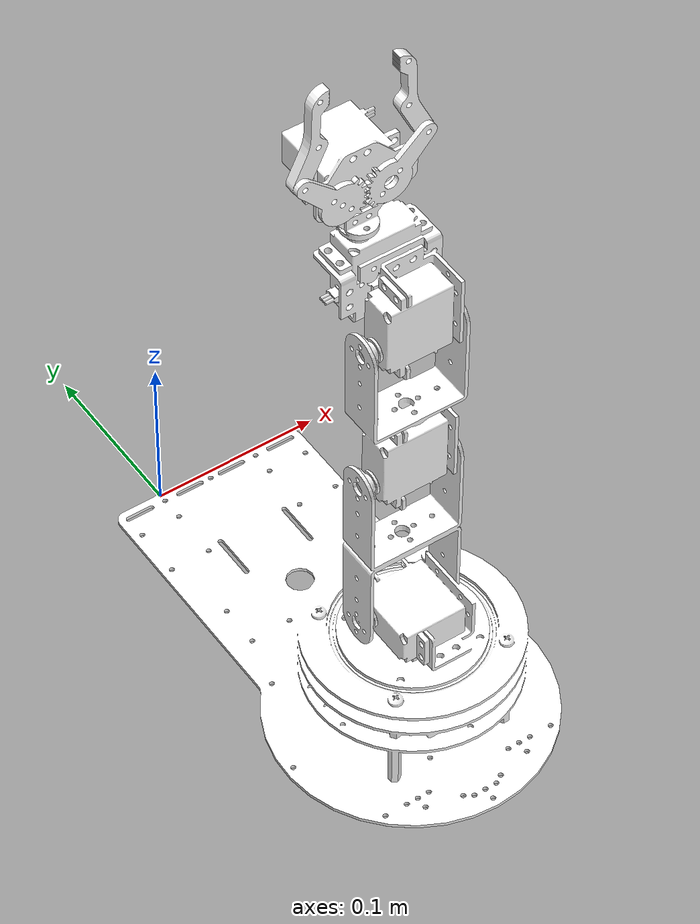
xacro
<?xml version="1.0"?>
<robot name="xrobot" xmlns:xacro="http://www.ros.org/wiki/xacro">
 <link name="world"/>
  <joint name="fixed" type="fixed">
    <parent link="world" />
    <child link="base_link" />
  </joint>
  <link
    name="base_link">
    <inertial>
      <origin
        xyz="0.0292502890665502 -0.178648801106571 0.0263512029302801"
        rpy="0 0 0" />
      <mass
        value="0.172815782772731" />
      <inertia
        ixx="0.000259349430323028"
        ixy="2.66244067148391E-13"
        ixz="-1.85201162809901E-13"
        iyy="0.000106356896106291"
        iyz="0.000100551527226304"
        izz="0.000169028677854162" />
    </inertial>
    <visual>
      <origin
        xyz="0 0 0"
        rpy="0 0 0" />
      <geometry>
        <mesh
          filename="package://xrobot/meshes/base_link.STL" />
      </geometry>
      <material
        name="">
        <color
          rgba="1 1 1 1" />
      </material>
    </visual>
    <collision>
      <origin
        xyz="0 0 0"
        rpy="0 0 0" />
      <geometry>
        <mesh
          filename="package://xrobot/meshes/base_link.STL" />
      </geometry>
    </collision>
  </link>
  <link
    name="link1">
    <inertial>
      <origin
        xyz="0.000447016246568756 0.00039635290899287 -0.0208005509059673"
        rpy="0 0 0" />
      <mass
        value="0.0580393899360045" />
      <inertia
        ixx="6.42193242103214E-06"
        ixy="-1.27097151646603E-08"
        ixz="-1.80700954506609E-07"
        iyy="6.92729489609466E-06"
        iyz="2.08993863386814E-08"
        izz="5.0631081327756E-07" />
    </inertial>
    <visual>
      <origin
        xyz="0 0 0"
        rpy="0 0 0" />
      <geometry>
        <mesh
          filename="package://xrobot/meshes/link1.STL" />
      </geometry>
      <material
        name="">
        <color
          rgba="1 1 1 1" />
      </material>
    </visual>
    <collision>
      <origin
        xyz="0 0 0"
        rpy="0 0 0" />
      <geometry>
        <mesh
          filename="package://xrobot/meshes/link1.STL" />
      </geometry>
    </collision>
  </link>
  <joint
    name="joint1"
    type="revolute">
    <origin
      xyz="0.02925 -0.19971 0.051"
      rpy="3.1416 0 0" />
    <parent
      link="base_link" />
    <child
      link="link1" />
    <axis
      xyz="0 0 1" />
    <limit
      lower="-3.14"
      upper="3.14"
      effort="100"
      velocity="1" />
  </joint>
  <link
    name="link2">
    <inertial>
      <origin
        xyz="1.38777878078145E-16 -0.0495614950731298 0.0238649956179246"
        rpy="0 0 0" />
      <mass
        value="0.0169994797251937" />
      <inertia
        ixx="9.8891754215374E-06"
        ixy="-2.81215621363918E-20"
        ixz="1.19279858350565E-20"
        iyy="4.4509372117766E-07"
        iyz="9.56263472768032E-07"
        izz="9.44408170035974E-06" />
    </inertial>
    <visual>
      <origin
        xyz="0 0 0"
        rpy="0 0 0" />
      <geometry>
        <mesh
          filename="package://xrobot/meshes/link2.STL" />
      </geometry>
      <material
        name="">
        <color
          rgba="1 1 1 1" />
      </material>
    </visual>
    <collision>
      <origin
        xyz="0 0 0"
        rpy="0 0 0" />
      <geometry>
        <mesh
          filename="package://xrobot/meshes/link2.STL" />
      </geometry>
    </collision>
  </link>
  <joint
    name="joint2"
    type="revolute">
    <origin
      xyz="-0.026 -0.0093623 -0.029"
      rpy="1.5708 0 1.5708" />
    <parent
      link="link1" />
    <child
      link="link2" />
    <axis
      xyz="0 0 1" />
    <limit
      lower="-3.14"
      upper="3.14"
      effort="100"
      velocity="1" />
  </joint>
  <link
    name="link3">
    <inertial>
      <origin
        xyz="0.00121857829689442 -0.020136005738826 -0.0259121615749935"
        rpy="0 0 0" />
      <mass
        value="0.0492429864623639" />
      <inertia
        ixx="2.28264243613525E-05"
        ixy="-4.58799806953608E-07"
        ixz="3.8935227406194E-07"
        iyy="1.53617796306787E-06"
        iyz="2.63577384017472E-07"
        izz="2.22944242031796E-05" />
    </inertial>
    <visual>
      <origin
        xyz="0 0 0"
        rpy="0 0 0" />
      <geometry>
        <mesh
          filename="package://xrobot/meshes/link3.STL" />
      </geometry>
      <material
        name="">
        <color
          rgba="1 1 1 1" />
      </material>
    </visual>
    <collision>
      <origin
        xyz="0 0 0"
        rpy="0 0 0" />
      <geometry>
        <mesh
          filename="package://xrobot/meshes/link3.STL" />
      </geometry>
    </collision>
  </link>
  <joint
    name="joint3"
    type="revolute">
    <origin
      xyz="0 -0.104 0"
      rpy="3.1416 1E-15 -3.1416" />
    <parent
      link="link2" />
    <child
      link="link3" />
    <axis
      xyz="0 0 -1" />
    <limit
      lower="-3.14"
      upper="3.14"
      effort="100"
      velocity="1" />
  </joint>
  <link
    name="link4">
    <inertial>
      <origin
        xyz="-0.0138537781432201 -0.019593553101695 0.0254900603887009"
        rpy="0 0 0" />
      <mass
        value="0.0763258518316471" />
      <inertia
        ixx="9.4187405427334E-06"
        ixy="-1.0309341320149E-05"
        ixz="-2.8447464915813E-07"
        iyy="1.42525755322077E-05"
        iyz="-3.27430668795753E-07"
        izz="2.15543313078854E-05" />
    </inertial>
    <visual>
      <origin
        xyz="0 0 0"
        rpy="0 0 0" />
      <geometry>
        <mesh
          filename="package://xrobot/meshes/link4.STL" />
      </geometry>
      <material
        name="">
        <color
          rgba="1 1 1 1" />
      </material>
    </visual>
    <collision>
      <origin
        xyz="0 0 0"
        rpy="0 0 0" />
      <geometry>
        <mesh
          filename="package://xrobot/meshes/link4.STL" />
      </geometry>
    </collision>
  </link>
  <joint
    name="joint4"
    type="revolute">
    <origin
      xyz="-0.001 -0.0965 0"
      rpy="-3.1416 -2E-15 -3.1416" />
    <parent
      link="link3" />
    <child
      link="link4" />
    <axis
      xyz="0 0 1" />
    <limit
      lower="-3.14"
      upper="3.14"
      effort="100"
      velocity="1" />
  </joint>
  <link
    name="link5">
    <inertial>
      <origin
        xyz="0.00388024415039572 0.0191733087894507 0.0248820232279329"
        rpy="0 0 0" />
      <mass
        value="0.0370354482255755" />
      <inertia
        ixx="3.09590716584593E-06"
        ixy="-2.69265113020214E-07"
        ixz="-1.60660619656558E-07"
        iyy="1.00181294933733E-06"
        iyz="-7.93866455643796E-07"
        izz="2.17341885790538E-06" />
    </inertial>
    <visual>
      <origin
        xyz="0 0 0"
        rpy="0 0 0" />
      <geometry>
        <mesh
          filename="package://xrobot/meshes/link5.STL" />
      </geometry>
      <material
        name="">
        <color
          rgba="1 1 1 1" />
      </material>
    </visual>
    <collision>
      <origin
        xyz="0 0 0"
        rpy="0 0 0" />
      <geometry>
        <mesh
          filename="package://xrobot/meshes/link5.STL" />
      </geometry>
    </collision>
  </link>
  <joint
    name="joint5"
    type="revolute">
    <origin
      xyz="-0.028 -0.0565 0.015"
      rpy="1.5708 -1.5708 0" />
    <parent
      link="link4" />
    <child
      link="link5" />
    <axis
      xyz="0 0 -1" />
    <limit
      lower="-3.14"
      upper="3.14"
      effort="100"
      velocity="1" />
  </joint>
  <link
    name="link6">
    <inertial>
      <origin
        xyz="0.0101389216911046 -0.0265895214562799 0.000106345188996604"
        rpy="0 0 0" />
      <mass
        value="0.00470245908475118" />
      <inertia
        ixx="1.57344908677699E-06"
        ixy="4.24373033709471E-07"
        ixz="-5.19250825344558E-08"
        iyy="1.39379774569395E-07"
        iyz="1.89682977766353E-07"
        izz="1.66641071743274E-06" />
    </inertial>
    <visual>
      <origin
        xyz="0 0 0"
        rpy="0 0 0" />
      <geometry>
        <mesh
          filename="package://xrobot/meshes/link6.STL" />
      </geometry>
      <material
        name="">
        <color
          rgba="1 1 1 1" />
      </material>
    </visual>
    <collision>
      <origin
        xyz="0 0 0"
        rpy="0 0 0" />
      <geometry>
        <mesh
          filename="package://xrobot/meshes/link6.STL" />
      </geometry>
    </collision>
  </link>
  <joint
    name="joint6"
    type="revolute">
    <origin
      xyz="0.013997 -0.0030157 0.026"
      rpy="-1.5708 1.3997E-14 -0.001125" />
    <parent
      link="link5" />
    <child
      link="link6" />
    <axis
      xyz="0 0 1" />
    <limit
      lower="-3.14"
      upper="3.14"
      effort="100"
      velocity="1" />
  </joint>
  <link
    name="link7">
    <inertial>
      <origin
        xyz="-0.0101103012994627 -0.0258764173342183 0.00103644564225763"
        rpy="0 0 0" />
      <mass
        value="0.00483204978171178" />
      <inertia
        ixx="1.66006805235176E-06"
        ixy="-4.56279044694453E-07"
        ixz="5.53399185862654E-08"
        iyy="1.51321447574823E-07"
        iyz="1.98422947049922E-07"
        izz="1.76325794594412E-06" />
    </inertial>
    <visual>
      <origin
        xyz="0 0 0"
        rpy="0 0 0" />
      <geometry>
        <mesh
          filename="package://xrobot/meshes/link7.STL" />
      </geometry>
      <material
        name="">
        <color
          rgba="1 1 1 1" />
      </material>
    </visual>
    <collision>
      <origin
        xyz="0 0 0"
        rpy="0 0 0" />
      <geometry>
        <mesh
          filename="package://xrobot/meshes/link7.STL" />
      </geometry>
    </collision>
  </link>
  <joint
    name="joint7"
    type="revolute">
    <origin
      xyz="-0.013754 -0.0039845 0.026"
      rpy="-1.5708 1.3997E-14 -0.001125" />
    <parent
      link="link5" />
    <child
      link="link7" />
    <axis
      xyz="0 0 1" />
    <limit
      lower="-3.14"
      upper="3.14"
      effort="100"
      velocity="1" />
  </joint>

  <!-- Transmissions for ROS Control -->
  <xacro:macro name="transmission_block" params="joint_name">
    <transmission name="tran1">
      <type>transmission_interface/SimpleTransmission</type>
      <joint name="${joint_name}">
        <hardwareInterface>hardware_interface/PositionJointInterface</hardwareInterface>
      </joint>
      <actuator name="motor1">
        <hardwareInterface>hardware_interface/PositionJointInterface</hardwareInterface>
        <mechanicalReduction>1</mechanicalReduction>
      </actuator>
    </transmission>
  </xacro:macro>

  <xacro:transmission_block joint_name="joint1"/>
  <xacro:transmission_block joint_name="joint2"/>
  <xacro:transmission_block joint_name="joint3"/>
  <xacro:transmission_block joint_name="joint4"/>
  <xacro:transmission_block joint_name="joint5"/>
  <xacro:transmission_block joint_name="joint6"/>
  <xacro:transmission_block joint_name="joint7"/>

    <!-- ros_control plugin -->
<gazebo>
    <plugin name="gazebo_ros_control" filename="libgazebo_ros_control.so">
        <robotNamespace>/xrobot</robotNamespace>
        <robotSimType>gazebo_ros_control/DefaultRobotHWSim</robotSimType>
        <legacyModeNS>true</legacyModeNS>
    </plugin>
</gazebo>

</robot>
